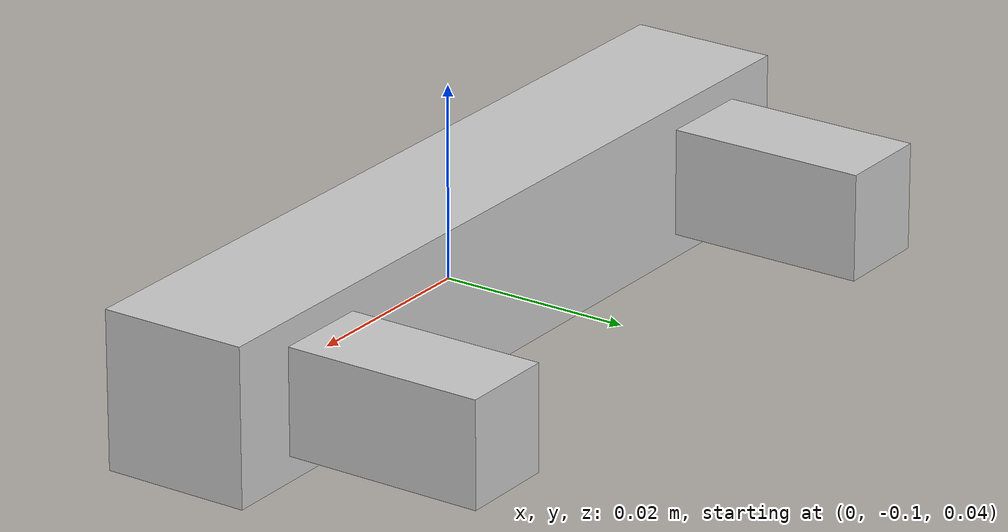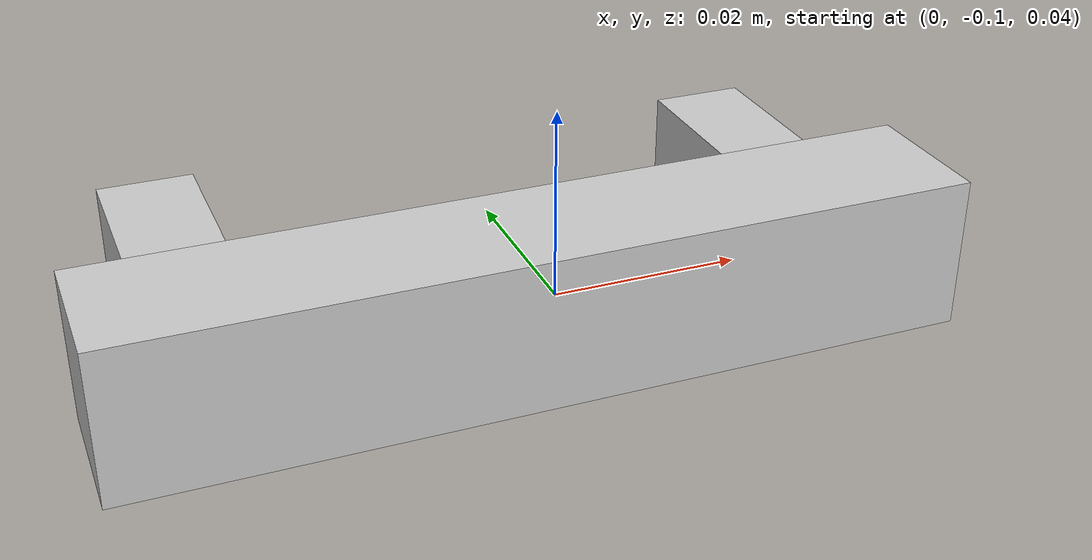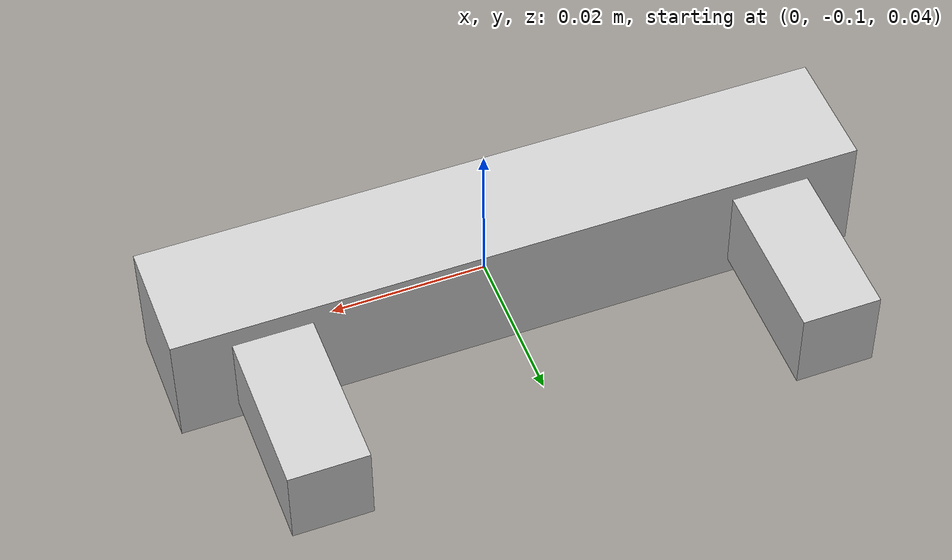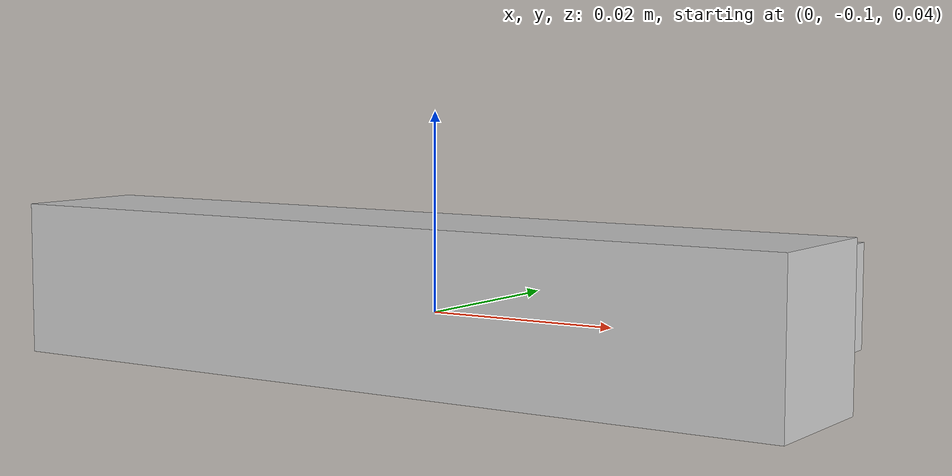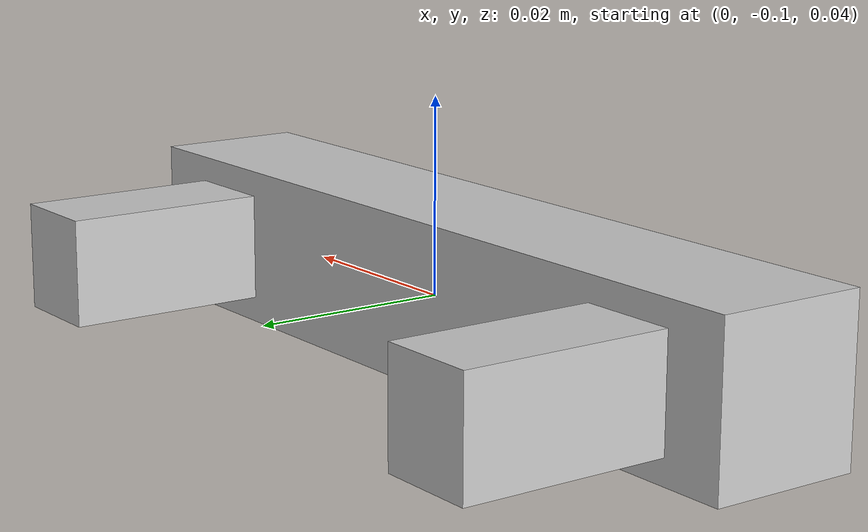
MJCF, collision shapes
<mujoco model="wooden_cabinet_bottom_handle">
  <asset>
  <texture file="dark_fine_wood.png" name="tex-wooden_cabinet_bottom_handle" type="2d" />
  <material name="wooden_cabinet_bottom_handle" reflectance="0.5" texrepeat="1 1" texture="tex-wooden_cabinet_bottom_handle" texuniform="false" />
  <mesh file="visual/wooden_cabinet_bottom_handle_vis.msh" name="wooden_cabinet_bottom_handle_vis" scale="0.05 0.05 0.05" /></asset>
  <worldbody>
    <body>
      <body name="object">
      <geom solimp="0.998 0.998 0.001" solref="0.001 1" density="100" friction="0.95 0.3 0.1" type="mesh" mesh="wooden_cabinet_bottom_handle_vis" conaffinity="0" contype="0" group="1" material="wooden_cabinet_bottom_handle" /><geom solimp="0.998 0.998 0.001" solref="0.001 1" density="100" friction="0.95 0.3 0.1" type="box" pos="-0.00278 -0.10161 0.04114" quat="0.50000 0.50000 -0.50000 -0.50000" size="0.00770 0.00817 0.04445" group="0" rgba="0.8 0.8 0.8 0.3" /><geom solimp="0.998 0.998 0.001" solref="0.001 1" density="100" friction="0.95 0.3 0.1" type="box" pos="0.02916 -0.08348 0.04114" quat="0.70711 0.70711 0.00000 -0.00000" size="0.00507 0.00552 0.01057" group="0" rgba="0.8 0.8 0.8 0.3" /><geom solimp="0.998 0.998 0.001" solref="0.001 1" density="100" friction="0.95 0.3 0.1" type="box" pos="-0.03560 -0.08348 0.04114" quat="0.70711 0.70711 0.00000 -0.00000" size="0.00507 0.00560 0.01057" group="0" rgba="0.8 0.8 0.8 0.3" /></body>
      <site rgba="0 0 0 0" size="0.005" pos="0 0 -0.06" name="bottom_site" />
      <site rgba="0 0 0 0" size="0.005" pos="0 0 0.04" name="top_site" />
      <site rgba="0 0 0 0" size="0.005" pos="0.025 0.025 0" name="horizontal_radius_site" />
    </body>
  </worldbody>
</mujoco>
